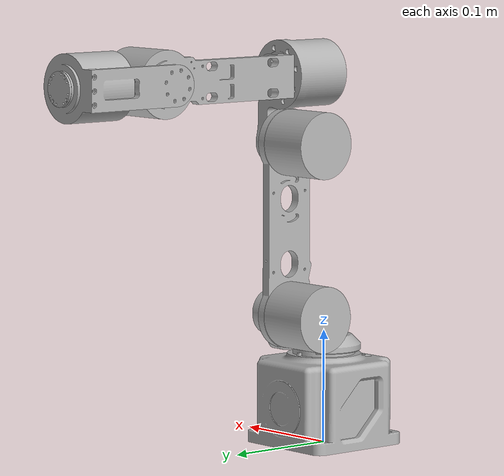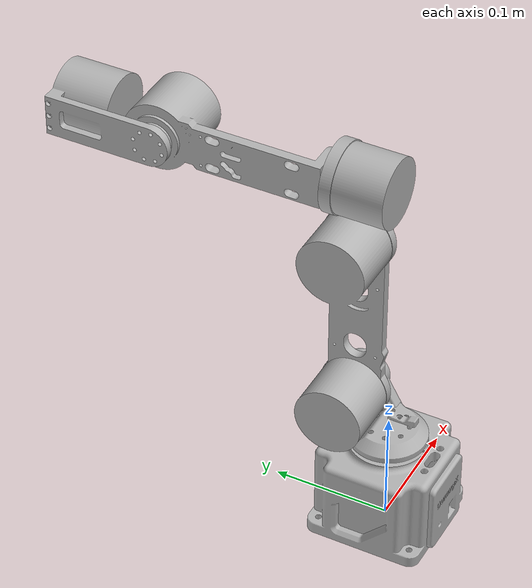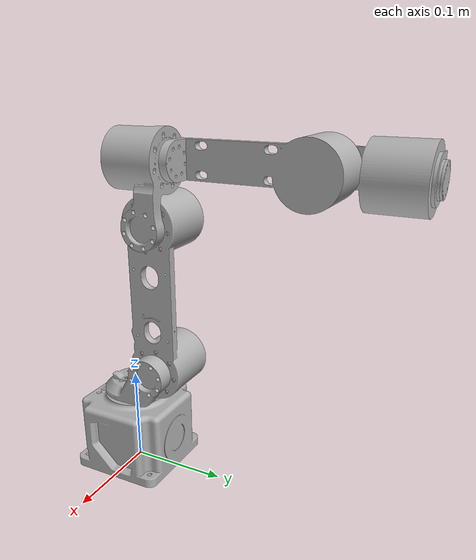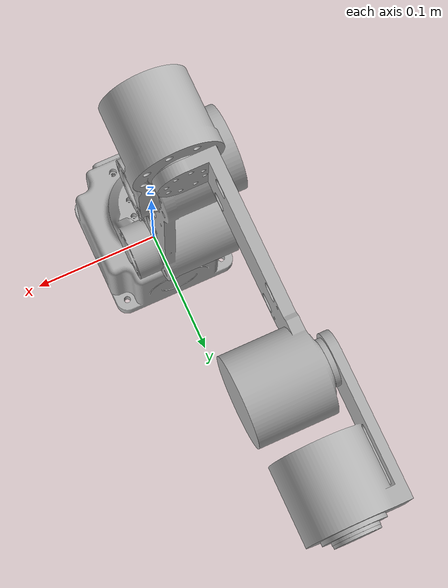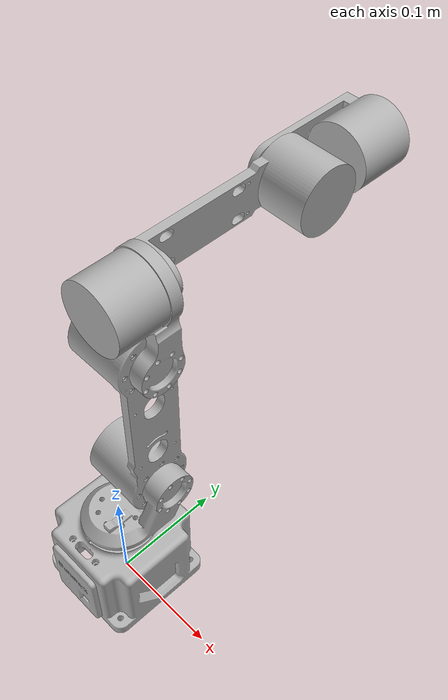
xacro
<?xml version="1.0"?>
<robot xmlns:xacro="http://www.ros.org/wiki/xacro" name="dummyx2">
    <xacro:arg name="initial_positions_file" default="initial_positions.yaml" />

    <!-- Import dummyx2 urdf file -->
    <xacro:include filename="$(find dummyx2_description)/urdf/dummyx2.xacro" />

    <!-- Import control_xacro -->
    <xacro:include filename="dummyx2.ros2_control.xacro" />

    <xacro:dummyx2_ros2_control name="FakeSystem" initial_positions_file="$(arg initial_positions_file)"/>

</robot>

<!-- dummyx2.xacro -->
<robot name="dummyx2" xmlns:xacro="http://www.ros.org/wiki/xacro">

<xacro:include filename="$(find dummyx2_description)/urdf/materials.xacro" />
<xacro:include filename="$(find dummyx2_description)/urdf/dummyx2.trans" />
<xacro:include filename="$(find dummyx2_description)/urdf/dummyx2.gazebo" />
<link name="base_link">
  <inertial>
    <origin xyz="-1.8359058695069233e-05 0.0018192263995238768 0.044025577902051125" rpy="0 0 0"/>
    <mass value="1.022538314976732"/>
    <inertia ixx="0.001755" iyy="0.001689" izz="0.002145" ixy="-1e-06" iyz="-3e-06" ixz="-0.0"/>
  </inertial>
  <visual>
    <origin xyz="0 0 0" rpy="0 0 0"/>
    <geometry>
      <mesh filename="file://$(find dummyx2_description)/meshes/base_link.stl" scale="0.001 0.001 0.001"/>
    </geometry>
    <material name="silver"/>
  </visual>
  <collision>
    <origin xyz="0 0 0" rpy="0 0 0"/>
    <geometry>
      <mesh filename="file://$(find dummyx2_description)/meshes/base_link.stl" scale="0.001 0.001 0.001"/>
    </geometry>
  </collision>
</link>

<link name="link1_1">
  <inertial>
    <origin xyz="0.009604821354180492 0.011372864789140376 0.02178381267345865" rpy="0 0 0"/>
    <mass value="0.18602431329317715"/>
    <inertia ixx="0.000125" iyy="9.1e-05" izz="0.000131" ixy="-3.4e-05" iyz="-4e-05" ixz="-2.2e-05"/>
  </inertial>
  <visual>
    <origin xyz="-0.0 -0.0 -0.0755" rpy="0 0 0"/>
    <geometry>
      <mesh filename="file://$(find dummyx2_description)/meshes/link1_1.stl" scale="0.001 0.001 0.001"/>
    </geometry>
    <material name="silver"/>
  </visual>
  <collision>
    <origin xyz="-0.0 -0.0 -0.0755" rpy="0 0 0"/>
    <geometry>
      <mesh filename="file://$(find dummyx2_description)/meshes/link1_1.stl" scale="0.001 0.001 0.001"/>
    </geometry>
  </collision>
</link>

<link name="link2_1">
  <inertial>
    <origin xyz="-0.025430019976914 -5.202416887895023e-06 0.07557385494301168" rpy="0 0 0"/>
    <mass value="0.7118234275442188"/>
    <inertia ixx="0.004014" iyy="0.004059" izz="0.000348" ixy="0.0" iyz="-0.0" ixz="-1e-06"/>
  </inertial>
  <visual>
    <origin xyz="-0.013518 -0.035005 -0.1165" rpy="0 0 0"/>
    <geometry>
      <mesh filename="file://$(find dummyx2_description)/meshes/link2_1.stl" scale="0.001 0.001 0.001"/>
    </geometry>
    <material name="silver"/>
  </visual>
  <collision>
    <origin xyz="-0.013518 -0.035005 -0.1165" rpy="0 0 0"/>
    <geometry>
      <mesh filename="file://$(find dummyx2_description)/meshes/link2_1.stl" scale="0.001 0.001 0.001"/>
    </geometry>
  </collision>
</link>

<link name="link3_1">
  <inertial>
    <origin xyz="-0.010203962913985749 -0.007208197035460495 0.05375277853925026" rpy="0 0 0"/>
    <mass value="0.3919493233562025"/>
    <inertia ixx="0.00029" iyy="0.000287" izz="0.000182" ixy="-9e-06" iyz="2.1e-05" ixz="4.1e-05"/>
  </inertial>
  <visual>
    <origin xyz="-0.013518 -0.035005 -0.2675" rpy="0 0 0"/>
    <geometry>
      <mesh filename="file://$(find dummyx2_description)/meshes/link3_1.stl" scale="0.001 0.001 0.001"/>
    </geometry>
    <material name="silver"/>
  </visual>
  <collision>
    <origin xyz="-0.013518 -0.035005 -0.2675" rpy="0 0 0"/>
    <geometry>
      <mesh filename="file://$(find dummyx2_description)/meshes/link3_1.stl" scale="0.001 0.001 0.001"/>
    </geometry>
  </collision>
</link>

<link name="link4_1">
  <inertial>
    <origin xyz="-0.001986417964714448 0.1204438413876579 5.909837349787894e-05" rpy="0 0 0"/>
    <mass value="0.4129155019344908"/>
    <inertia ixx="0.000881" iyy="0.000175" izz="0.000903" ixy="-9e-05" iyz="0.0" ixz="0.0"/>
  </inertial>
  <visual>
    <origin xyz="-0.001 -0.05451 -0.3275" rpy="0 0 0"/>
    <geometry>
      <mesh filename="file://$(find dummyx2_description)/meshes/link4_1.stl" scale="0.001 0.001 0.001"/>
    </geometry>
    <material name="silver"/>
  </visual>
  <collision>
    <origin xyz="-0.001 -0.05451 -0.3275" rpy="0 0 0"/>
    <geometry>
      <mesh filename="file://$(find dummyx2_description)/meshes/link4_1.stl" scale="0.001 0.001 0.001"/>
    </geometry>
  </collision>
</link>

<link name="link5_1">
  <inertial>
    <origin xyz="0.021577215896324574 0.062405734710201444 1.5760376337325965e-10" rpy="0 0 0"/>
    <mass value="0.35801694858484556"/>
    <inertia ixx="0.000232" iyy="0.000174" izz="0.000267" ixy="-4.2e-05" iyz="-0.0" ixz="0.0"/>
  </inertial>
  <visual>
    <origin xyz="0.0265 -0.195036 -0.3275" rpy="0 0 0"/>
    <geometry>
      <mesh filename="file://$(find dummyx2_description)/meshes/link5_1.stl" scale="0.001 0.001 0.001"/>
    </geometry>
    <material name="silver"/>
  </visual>
  <collision>
    <origin xyz="0.0265 -0.195036 -0.3275" rpy="0 0 0"/>
    <geometry>
      <mesh filename="file://$(find dummyx2_description)/meshes/link5_1.stl" scale="0.001 0.001 0.001"/>
    </geometry>
  </collision>
</link>

<link name="link6_1">
  <inertial>
    <origin xyz="-1.554693873639934e-13 0.00112013783139564 1.2045919817182948e-14" rpy="0 0 0"/>
    <mass value="0.002957269129418366"/>
    <inertia ixx="0.0" iyy="0.0" izz="0.0" ixy="-0.0" iyz="-0.0" ixz="0.0"/>
  </inertial>
  <visual>
    <origin xyz="0.00085 -0.29061 -0.3275" rpy="0 0 0"/>
    <geometry>
      <mesh filename="file://$(find dummyx2_description)/meshes/link6_1.stl" scale="0.001 0.001 0.001"/>
    </geometry>
    <material name="silver"/>
  </visual>
  <collision>
    <origin xyz="0.00085 -0.29061 -0.3275" rpy="0 0 0"/>
    <geometry>
      <mesh filename="file://$(find dummyx2_description)/meshes/link6_1.stl" scale="0.001 0.001 0.001"/>
    </geometry>
  </collision>
</link>

<joint name="Joint1" type="revolute">
  <origin xyz="0.0 0.0 0.0755" rpy="0 0 0"/>
  <parent link="base_link"/>
  <child link="link1_1"/>
  <axis xyz="0.0 -0.0 -1.0"/>
  <limit upper="3.106686" lower="-3.106686" effort="100" velocity="2.513" acceleration="2.513"/>
</joint>

<joint name="Joint2" type="revolute">
  <origin xyz="0.013518 0.035005 0.041" rpy="0 0 0"/>
  <parent link="link1_1"/>
  <child link="link2_1"/>
  <axis xyz="-1.0 0.0 0.0"/>
  <limit upper="2.094395" lower="-1.396263" effort="100" velocity="2.513" acceleration="2.513"/>
</joint>

<joint name="Joint3" type="revolute">
  <origin xyz="0.0 0.0 0.151" rpy="0 0 0"/>
  <parent link="link2_1"/>
  <child link="link3_1"/>
  <axis xyz="1.0 -0.0 -0.0"/>
  <limit upper="1.570796" lower="-1.570796" effort="100" velocity="2.513" acceleration="2.513"/>
</joint>

<joint name="Joint4" type="revolute">
  <origin xyz="-0.012518 0.019505 0.06" rpy="0 0 0"/>
  <parent link="link3_1"/>
  <child link="link4_1"/>
  <axis xyz="0.0 1.0 0.0"/>
  <limit upper="3.106686" lower="-3.106686" effort="100" velocity="2.513" acceleration="2.513"/>
</joint>

<joint name="Joint5" type="revolute">
  <origin xyz="-0.0275 0.140526 0.0" rpy="0 0 0"/>
  <parent link="link4_1"/>
  <child link="link5_1"/>
  <axis xyz="-1.0 -0.0 0.0"/>
  <limit upper="2.094395" lower="-1.832596" effort="100" velocity="2.513" acceleration="2.513"/>
</joint>

<joint name="Joint6" type="revolute">
  <origin xyz="0.02565 0.095574 0.0" rpy="0 0 0"/>
  <parent link="link5_1"/>
  <child link="link6_1"/>
  <axis xyz="0.0 1.0 0.0"/>
  <limit upper="3.106686" lower="-3.106686" effort="100" velocity="2.513" acceleration="2.513"/>
</joint>

</robot>

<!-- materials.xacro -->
<robot name="dummyx2" xmlns:xacro="http://www.ros.org/wiki/xacro" >

<material name="silver">
  <color rgba="0.700 0.700 0.700 1.000"/>
</material>

</robot>

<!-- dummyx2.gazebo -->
<robot name="dummyx2" xmlns:xacro="http://www.ros.org/wiki/xacro" >

<xacro:property name="body_color" value="Gazebo/Silver" />

<gazebo>
  <plugin name="control" filename="libgazebo_ros_control.so"/>
</gazebo>
<gazebo reference="base_link">
  <material>${body_color}</material>
  <mu1>0.2</mu1>
  <mu2>0.2</mu2>
  <self_collide>true</self_collide>
  <gravity>true</gravity>
</gazebo>

<gazebo reference="link1_1">
  <material>${body_color}</material>
  <mu1>0.2</mu1>
  <mu2>0.2</mu2>
  <self_collide>true</self_collide>
</gazebo>

<gazebo reference="link2_1">
  <material>${body_color}</material>
  <mu1>0.2</mu1>
  <mu2>0.2</mu2>
  <self_collide>true</self_collide>
</gazebo>

<gazebo reference="link3_1">
  <material>${body_color}</material>
  <mu1>0.2</mu1>
  <mu2>0.2</mu2>
  <self_collide>true</self_collide>
</gazebo>

<gazebo reference="link4_1">
  <material>${body_color}</material>
  <mu1>0.2</mu1>
  <mu2>0.2</mu2>
  <self_collide>true</self_collide>
</gazebo>

<gazebo reference="link5_1">
  <material>${body_color}</material>
  <mu1>0.2</mu1>
  <mu2>0.2</mu2>
  <self_collide>true</self_collide>
</gazebo>

<gazebo reference="link6_1">
  <material>${body_color}</material>
  <mu1>0.2</mu1>
  <mu2>0.2</mu2>
  <self_collide>true</self_collide>
</gazebo>

</robot>
